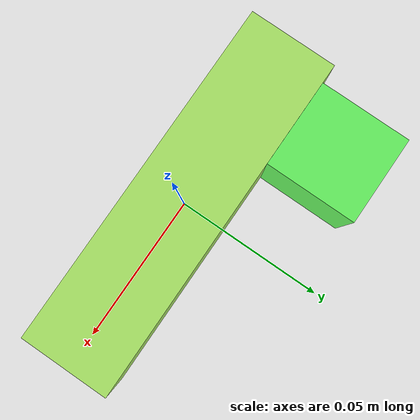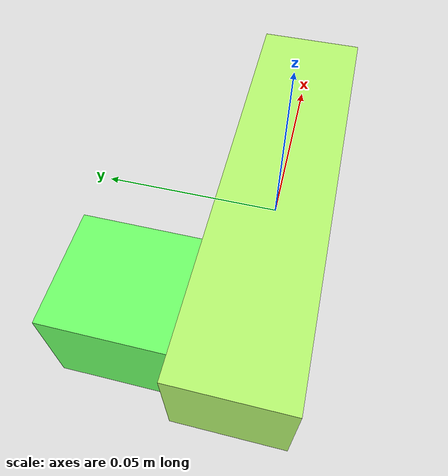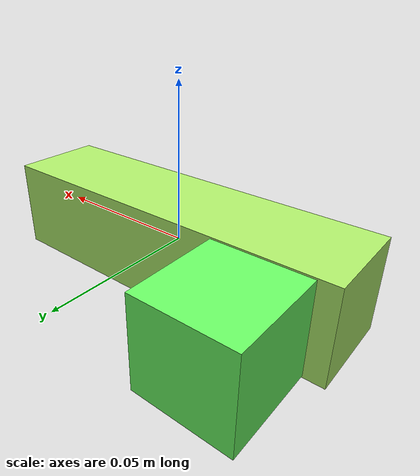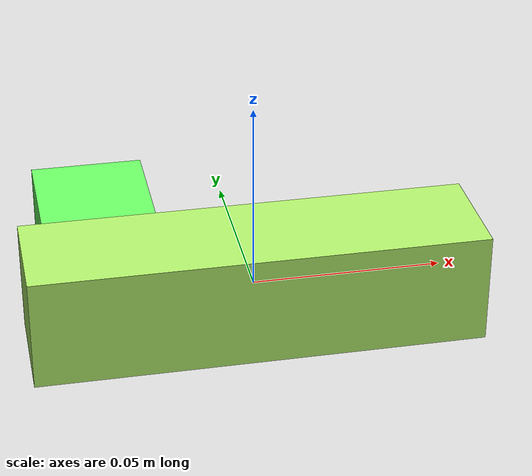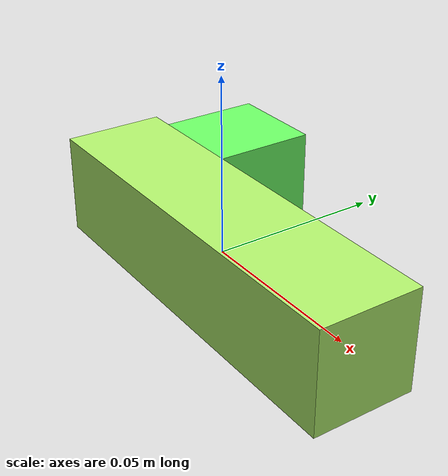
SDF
<sdf version="1.4"><world name="default"><model name="object0"><link name="link1"><pose>0 0 0 0 0 0</pose><inertial><pose>0 0 0 0 0 0</pose><mass>0.06409888699256731</mass><inertia><ixx>9.614833048885095e-06</ixx><ixy>0</ixy><iyy>8.007062006525435e-05</iyy><ixz>0</ixz><iyz>0</iyz><izz>8.007062006525435e-05</izz></inertia></inertial><visual name="link1_visual"><pose>0 0  0 0 0 0</pose><geometry><box><size>0.11870164257882837 0.03 0.03</size></box></geometry><material><diffuse>0.6980993492502541 0.9459728533768221 0.4219426357306912 1</diffuse></material></visual><collision><pose>0 0  0 0 0 0</pose><geometry><box><size>0.11870164257882837 0.03 0.03</size></box></geometry></collision></link><link name="link2"><pose>-0.038082427350876434 0.028548853201724622 0 0 0 0</pose><inertial><pose>0 0 0 0 0 0</pose><mass>0.018825190912887747</mass><inertia><ixx>3.2258874096380334e-06</ixx><ixy>0</ixy><iyy>2.7312214482781306e-06</iyy><ixz>0</ixz><iyz>0</iyz><izz>3.3184445982930654e-06</izz></inertia></inertial><visual name="link2_visual"><pose>0 0  0 0 0 0</pose><geometry><box><size>0.03 0.03486146465349583 0.028999999999999998</size></box></geometry><material><diffuse>0.42173610383208837 0.9991662251710176 0.39713100648867494 1</diffuse></material></visual><collision><pose>0 0  0 0 0 0</pose><geometry><box><size>0.03 0.03486146465349583 0.028999999999999998</size></box></geometry></collision></link><joint name="link_joint_0" type="fixed"><parent>link1</parent><child>link2</child><pose>0 0 0 0 0 0</pose><axis><xyz>0 0 1</xyz></axis></joint></model></world></sdf>
